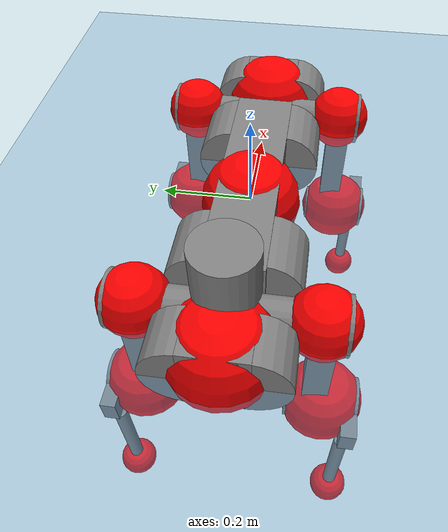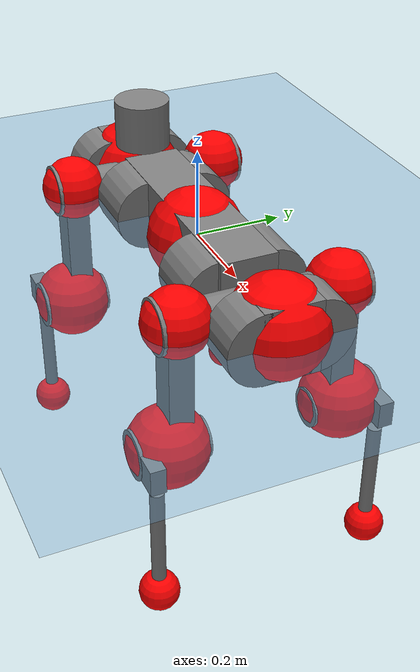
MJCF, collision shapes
<mujoco model="anymal_c">
  <compiler angle="radian" assetdir="assets" balanceinertia="true" inertiafromgeom="false"/>

  <option timestep="0.005" density="1.2" viscosity="2e-05"/>

  <size nkey="1"/>

  <visual>
    <quality shadowsize="8192"/>
    <map shadowclip="0.5"/>
  </visual>

  <default>
    <default class="/">
      <material specular="0" shininess="0.25"/>
      <geom contype="0" conaffinity="0" group="1" solref="-1000 -80"/>
      <site size="0.01 0.005 0.005" group="5"/>
      <general forcelimited="true" forcerange="-80 80" biastype="affine" gainprm="80" biasprm="0 -80 -2"/>
      <default class="anymal_c">
        <joint armature="0.01" damping="0.01" frictionloss="0.1"/>
        <default class="visual">
          <geom type="mesh" group="2"/>
          <default class="visual_zflip"/>
        </default>
        <default class="collision">
          <geom type="cylinder" group="3"/>
          <default class="foot">
            <geom size="0.03 0 0" type="sphere" condim="6" priority="1" friction="0.8 0.02 0.01" solimp="0.015 1 0.03"/>
          </default>
        </default>
      </default>
      <default class="reward_collision_sphere">
        <geom group="5" rgba="1 0 0 1"/>
      </default>
    </default>
  </default>

  <asset>
    <texture type="skybox" colorspace="auto" name="//unnamed_texture_0" builtin="gradient" rgb1="0.95 0.95 0.95" rgb2="0.95 0.95 0.95" width="100" height="600"/>
    <texture type="2d" colorspace="auto" name="texplane" builtin="checker" rgb1="0.345 0.575 0.748" rgb2="0.345 0.575 0.748" markrgb="1 1 1" width="512" height="512"/>
    <texture type="2d" colorspace="linear" name="base" file="base.png"/>
    <texture type="2d" colorspace="linear" name="top_shell" file="top_shell.png"/>
    <texture type="2d" colorspace="linear" name="bottom_shell" file="bottom_shell.png"/>
    <texture type="2d" colorspace="linear" name="remote" file="remote.png"/>
    <texture type="2d" colorspace="linear" name="hatch" file="hatch.png"/>
    <texture type="2d" colorspace="linear" name="handle" file="handle.png"/>
    <texture type="2d" colorspace="linear" name="face" file="face.png"/>
    <texture type="2d" colorspace="linear" name="battery" file="battery.png"/>
    <texture type="2d" colorspace="linear" name="lidar_cage" file="lidar_cage.png"/>
    <texture type="2d" colorspace="linear" name="depth_camera" file="depth_camera.png"/>
    <texture type="2d" colorspace="linear" name="wide_angle_camera" file="wide_angle_camera.png"/>
    <texture type="2d" colorspace="linear" name="lidar" file="lidar.png"/>
    <texture type="2d" colorspace="linear" name="drive" file="drive.png"/>
    <texture type="2d" colorspace="linear" name="hip_l" file="hip_l.png"/>
    <texture type="2d" colorspace="linear" name="shank_l" file="shank_l.png"/>
    <texture type="2d" colorspace="linear" name="foot" file="foot.png"/>
    <texture type="2d" colorspace="linear" name="thigh" file="thigh.png"/>
    <texture type="2d" colorspace="linear" name="shank_r" file="shank_r.png"/>
    <texture type="2d" colorspace="linear" name="hip_r" file="hip_r.png"/>
    <material name="MatPlane" class="/" texture="texplane" texuniform="true" texrepeat="2 2" specular="0.9" shininess="0.5"/>
    <material name="black_plastic" class="/" rgba="0.007 0.007 0.007 1"/>
    <material name="green" class="/" rgba="0.052 0.178 0.033 1"/>
    <material name="red" class="/" rgba="0.178 0.006 0.005 1"/>
    <material name="yellow" class="/" rgba="0.178 0.119 0.006 1"/>
    <material name="lwl" class="/" rgba="0.8 0.8 0.8 1"/>
    <material name="base" class="/" texture="base"/>
    <material name="top_shell" class="/" texture="top_shell"/>
    <material name="bottom_shell" class="/" texture="bottom_shell"/>
    <material name="hip_l" class="/" texture="hip_l"/>
    <material name="thigh" class="/" texture="thigh"/>
    <material name="shank_l" class="/" texture="shank_l"/>
    <material name="foot" class="/" texture="foot"/>
    <material name="hip_r" class="/" texture="hip_r"/>
    <material name="shank" class="/" texture="shank_r"/>
    <material name="hatch" class="/" texture="hatch"/>
    <material name="remote" class="/" texture="remote"/>
    <material name="handle" class="/" texture="handle"/>
    <material name="face" class="/" texture="face"/>
    <material name="depth_camera" class="/" texture="depth_camera"/>
    <material name="wide_angle_camera" class="/" texture="wide_angle_camera"/>
    <material name="battery" class="/" texture="battery"/>
    <material name="lidar_cage" class="/" texture="lidar_cage"/>
    <material name="lidar" class="/" texture="lidar"/>
    <material name="drive" class="/" texture="drive"/>
    <mesh name="base_0" class="/" file="base_0.obj"/>
    <mesh name="base_1" class="/" file="base_1.obj"/>
    <mesh name="base_2" class="/" file="base_2.obj"/>
    <mesh name="base_3" class="/" file="base_3.obj"/>
    <mesh name="base_4" class="/" file="base_4.obj"/>
    <mesh name="base_5" class="/" file="base_5.obj"/>
    <mesh name="top_shell" class="/" file="top_shell.obj"/>
    <mesh name="bottom_shell" class="/" file="bottom_shell.obj"/>
    <mesh name="remote" class="/" file="remote.obj"/>
    <mesh name="handle" class="/" file="handle.obj"/>
    <mesh name="face" class="/" file="face.obj"/>
    <mesh name="wide_angle_camera" class="/" file="wide_angle_camera.obj"/>
    <mesh name="depth_camera" class="/" file="depth_camera.obj"/>
    <mesh name="battery" class="/" file="battery.obj"/>
    <mesh name="lidar_cage" class="/" file="lidar_cage.obj"/>
    <mesh name="lidar" class="/" file="lidar.obj"/>
    <mesh name="drive" class="/" file="drive.obj"/>
    <mesh name="hip_l" class="/" file="hip_l.obj"/>
    <mesh name="thigh" class="/" file="thigh.obj"/>
    <mesh name="shank_l" class="/" file="shank_l.obj"/>
    <mesh name="foot" class="/" file="foot.obj"/>
    <mesh name="hip_r" class="/" file="hip_r.obj"/>
    <mesh name="hatch" class="/" file="hatch.obj"/>
    <mesh name="shank_r" class="/" file="shank_r.obj"/>
  </asset>

  <worldbody>
    <geom name="floor" class="/" size="100 100 0.125" type="plane" group="0" material="MatPlane"/>
    <light name="toplight_shadow" class="/" pos="0 0 5" dir="0.0990148 0.0990148 -0.990148" type="directional" ambient="0.04 0.04 0.04" diffuse="0.55 0.55 0.55" specular="0.12 0.12 0.12"/>
    <light name="toplight_fill" class="/" pos="0 0 5" dir="0.0990148 0.0990148 -0.990148" type="directional" castshadow="false" ambient="0.04 0.04 0.04" diffuse="0.3 0.3 0.3" specular="0.08 0.08 0.08"/>
    <body name="trunk" childclass="anymal_c" pos="-0.00282454 -0.000991861 -0.00220864" quat="0.999999 0.000846888 0.000967592 0.000420971">
      <inertial pos="-0.000419149 0.00212287 0.0529053" quat="0.490456 0.49874 0.501271 0.50935" mass="15.0812" diaginertia="0.339427 0.229401 0.314035"/>
      <joint name="//unnamed_joint_0" type="free" armature="0" damping="0" frictionloss="0"/>
      <geom name="//unnamed_geom_1" class="visual" material="green" mesh="base_0"/>
      <geom name="//unnamed_geom_2" class="visual" material="yellow" mesh="base_1"/>
      <geom name="//unnamed_geom_3" class="visual" material="red" mesh="base_2"/>
      <geom name="//unnamed_geom_4" class="visual" material="black_plastic" mesh="base_3"/>
      <geom name="//unnamed_geom_5" class="visual" material="lwl" mesh="base_4"/>
      <geom name="//unnamed_geom_6" class="visual" material="base" mesh="base_5"/>
      <geom name="trunk_1" class="collision" size="0.268135 0.0647222 0.0832142" type="box"/>
      <geom name="trunk_2" class="collision" size="0.0832142 0.0670337" pos="0.190984 0.0574973 0" quat="0.707107 0 0.707107 0"/>
      <geom name="trunk_3" class="collision" size="0.0832142 0.0670337" pos="-0.190984 0.0574973 0" quat="0.707107 0 0.707107 0"/>
      <geom name="trunk_4" class="collision" size="0.0832142 0.0670337" pos="0.190984 -0.0574973 0" quat="0.707107 0 0.707107 0"/>
      <geom name="trunk_5" class="collision" size="0.0832142 0.0670337" pos="-0.190984 -0.0574973 0" quat="0.707107 0 0.707107 0"/>
      <geom name="//unnamed_geom_12" class="visual" material="top_shell" mesh="top_shell"/>
      <geom name="//unnamed_geom_13" class="visual" material="bottom_shell" mesh="bottom_shell"/>
      <geom name="//unnamed_geom_14" class="visual" material="remote" mesh="remote"/>
      <geom name="//unnamed_geom_15" class="visual" material="handle" mesh="handle"/>
      <geom name="//unnamed_geom_16" class="visual" pos="0.363966 0 0" quat="1 0 0 0" material="face" mesh="face"/>
      <geom name="trunk_6" class="collision" size="0.0508531 0.0647222 0.0832142" pos="0.412261 0 0" type="box"/>
      <geom name="//unnamed_geom_18" class="collision" size="0.0832142 0.0508531" pos="0.412261 0.0574973 0" quat="0.707107 0 0.707107 0"/>
      <geom name="//unnamed_geom_19" class="collision" size="0.0832142 0.0508531" pos="0.412261 -0.0574973 0" quat="0.707107 0 0.707107 0"/>
      <geom name="//unnamed_geom_20" class="visual" pos="0.405376 0 -0.0328619" quat="0.965926 0 0.258819 0" material="depth_camera" mesh="depth_camera"/>
      <geom name="//unnamed_geom_21" class="visual" pos="0.450458 0 0.0160827" material="wide_angle_camera" mesh="wide_angle_camera"/>
      <geom name="//unnamed_geom_22" class="visual_zflip" pos="-0.363966 0 0" quat="0 0 0 1" material="face" mesh="face"/>
      <geom name="trunk_7" class="collision" size="0.0508531 0.0647222 0.0832142" pos="-0.412261 0 0" quat="0 0 0 1" type="box"/>
      <geom name="//unnamed_geom_24" class="collision" size="0.0832142 0.0508531" pos="-0.412261 -0.0574973 0" quat="0 -0.707107 0 0.707107"/>
      <geom name="//unnamed_geom_25" class="collision" size="0.0832142 0.0508531" pos="-0.412261 0.0574973 0" quat="0 -0.707107 0 0.707107"/>
      <geom name="//unnamed_geom_26" class="visual" pos="-0.405376 0 -0.0328619" quat="0 -0.258819 0 0.965926" material="depth_camera" mesh="depth_camera"/>
      <geom name="//unnamed_geom_27" class="visual_zflip" pos="-0.450458 0 0.0160827" quat="0 0 0 1" material="wide_angle_camera" mesh="wide_angle_camera"/>
      <geom name="//unnamed_geom_28" class="visual" material="battery" mesh="battery"/>
      <geom name="//unnamed_geom_29" class="visual" pos="0 0.0620677 0.0297178" quat="0.683013 -0.183013 0.183013 0.683013" material="depth_camera" mesh="depth_camera"/>
      <geom name="//unnamed_geom_30" class="visual" pos="0 -0.0620677 0.0297178" quat="0.683013 0.183013 0.183013 -0.683013" material="depth_camera" mesh="depth_camera"/>
      <geom name="//unnamed_geom_31" class="visual" pos="-0.319623 0 0.0789633" quat="1 0 0 0" material="lidar_cage" mesh="lidar_cage"/>
      <geom name="trunk_8" class="collision" size="0.0647222 0.0554761" pos="-0.319623 0 0.143423"/>
      <geom name="//unnamed_geom_33" class="visual" pos="-0.319623 -2.22738e-05 0.15277" quat="0.707107 0 0 -0.707107" material="lidar" mesh="lidar"/>
      <geom name="//unnamed_geom_34" class="visual" pos="0.263338 0.0855145 -4.36324e-09" quat="0.258819 0.965926 0 0" material="drive" mesh="drive"/>
      <geom name="//unnamed_geom_35" class="visual" pos="0.263338 -0.0855145 4.36324e-09" quat="0.258819 -0.965926 0 0" material="drive" mesh="drive"/>
      <geom name="//unnamed_geom_36" class="visual" pos="-0.263338 0.0855145 4.36324e-09" quat="0 0 0.965926 -0.258819" material="drive" mesh="drive"/>
      <geom name="//unnamed_geom_37" class="visual" pos="-0.263338 -0.0855145 -4.36324e-09" quat="0 0 -0.965926 -0.258819" material="drive" mesh="drive"/>
      <geom name="//unnamed_geom_38" class="visual" pos="0.101858 0 0.0784262" quat="1 0 0 0" material="hatch" mesh="hatch"/>
      <geom name="//unnamed_geom_39" class="reward_collision_sphere" size="0.110952"/>
      <geom name="//unnamed_geom_40" class="reward_collision_sphere" size="0.110952" pos="0.395138 0 0"/>
      <geom name="//unnamed_geom_41" class="reward_collision_sphere" size="0.110952" pos="-0.395138 0 0"/>
      <site name="imu" pos="0.230701 -0.000312875 0.0440628" size="0.00924602"/>
      <camera name="track" pos="0 -1.64278 0" quat="0.707107 0.707107 0 0" mode="trackcom"/>
      <camera name="ego_camera" pos="0.395138 0 -0.0429732" quat="-0.5 -0.5 0.5 0.5"/>
      <body name="LF_HIP" pos="0.264002 0.0853651 -0.00281518" quat="0.258009 0.966142 0.000429782 -0.000320783">
        <inertial pos="0.0475929 -0.0131618 -0.00891483" quat="-0.114344 0.709815 -0.138659 0.681074" mass="2.26178" diaginertia="0.00314558 0.00189562 0.00497621"/>
        <joint name="LF_HAA" pos="0 0 0" axis="0.999882 -0.00467553 -0.0146356" range="-0.67351 0.485822" armature="0.0106393" damping="0.00357379" frictionloss="0.0967837"/>
        <geom name="//unnamed_geom_42" class="visual" pos="0 -0.00025667 4.21578e-05" quat="0.258819 -0.965926 0 0" material="hip_l" mesh="hip_l"/>
        <geom name="//unnamed_geom_43" class="visual" pos="0.0525973 -0.0630762 -0.038288" quat="0.183013 -0.683013 0.683013 0.183013" material="drive" mesh="drive"/>
        <geom name="//unnamed_geom_44" class="collision" size="0.0462301 0.0647222" pos="0.0525973 -0.00982367 -0.00741825" quat="-0.353553 -0.612372 0.612372 -0.353553"/>
        <body name="LF_THIGH" pos="0.0528874 -0.0597191 -0.0469249" quat="0.183056 -0.682839 0.683109 0.183255">
          <inertial pos="0.0272309 -0.00217791 -0.265325" quat="0.99303 -0.00417755 -0.0805032 0.0859834" mass="2.43612" diaginertia="0.0155416 0.0107777 0.00590756"/>
          <joint name="LF_HFE" pos="0 0 0" axis="0.999999 -0.00117096 -0.000148734" stiffness="0.00855362" range="-3.15069 3.17427" armature="0.00824819" damping="0" frictionloss="0.0930745"/>
          <geom name="//unnamed_geom_45" class="visual" pos="0.001128 1.77746e-06 0" quat="0.707107 0 0 -0.707107" material="thigh" mesh="thigh"/>
          <geom name="//unnamed_geom_46" class="collision" size="0.0600991 0.0369841" pos="0.0351234 0 0" quat="0.5 0.5 -0.5 -0.5"/>
          <geom name="//unnamed_geom_47" class="collision" size="0.0346726 0.0277381 0.130659" pos="0.0263426 0 -0.151818" quat="0.707107 0 0 -0.707107" type="box"/>
          <geom name="//unnamed_geom_48" class="visual" pos="0.088072 0 -0.306184" quat="1 0 0 0" material="drive" mesh="drive"/>
          <geom name="//unnamed_geom_49" class="collision" size="0.0462301 0.0647222" pos="0.026606 0 -0.306184" quat="0.707107 0 0.707107 0"/>
          <geom name="//unnamed_geom_50" class="reward_collision_sphere" size="0.0739682" pos="0.0219521 0 0"/>
          <body name="LF_SHANK" pos="0.0892142 0.0014583 -0.303569" quat="1 -0.000132008 8.64689e-05 5.57021e-05">
            <inertial pos="0.00438128 -0.0526694 -0.0839394" quat="0.992895 -0.116383 -0.000758423 -0.0247878" mass="0.480477" diaginertia="0.00551435 0.00347924 0.00160392"/>
            <joint name="LF_KFE" pos="0 0 0" axis="1 -0.000570574 -0.000119646" range="-3.08526 3.08924" armature="0.00921202" damping="0.00874465" frictionloss="0.0973152"/>
            <geom name="//unnamed_geom_51" class="visual" pos="0.000367816 0.00196121 0" quat="0.707107 0 0 -0.707107" material="shank_l" mesh="shank_l"/>
            <geom name="LF_kfe_act" class="collision" size="0.0554761 0.018492" pos="0.0175617 0 0" quat="0.5 0.5 -0.5 -0.5"/>
            <geom name="//unnamed_geom_53" class="collision" size="0.0531637 0.0312053 0.0175674" pos="0.0175617 -0.0472291 0" quat="0.5 0.5 -0.5 -0.5" type="box"/>
            <geom name="//unnamed_geom_54" class="visual" pos="0.0114589 -0.0716093 -0.363092" quat="0.382683 0 0 -0.92388" material="foot" mesh="foot"/>
            <geom name="LF_calf" class="collision" size="0.0161805 0.130602" pos="0.011459 -0.0722413 -0.181546" quat="0.707107 0 0 -0.707107"/>
            <geom name="LF_foot" class="foot" size="0.026823" pos="0.011459 -0.0722413 -0.338919" quat="0.707107 0 0 -0.707107"/>
            <geom name="//unnamed_geom_57" class="reward_collision_sphere" size="0.0924602" pos="-0.0439043 0 0"/>
            <geom name="//unnamed_geom_58" class="reward_collision_sphere" size="0.0462301" pos="0.011459 -0.0722413 -0.338919"/>
            <site name="LF_foot" class="foot" pos="0.011459 -0.0722413 -0.338919" quat="0.707107 0 0 -0.707107" size="0.00924602"/>
          </body>
        </body>
      </body>
      <body name="RF_HIP" pos="0.266201 -0.0834887 0.00240496" quat="0.258798 -0.965931 -8.39143e-06 5.71892e-05">
        <inertial pos="0.049799 0.0102935 -0.00868919" quat="0.141806 0.685047 0.126412 0.703293" mass="2.25645" diaginertia="0.00304777 0.0019251 0.00478911"/>
        <joint name="RF_HAA" pos="0 0 0" axis="0.999999 0.00140442 -1.3557e-05" range="-0.436636 0.71046" armature="0.00936653" damping="0.011537" frictionloss="0.0966354"/>
        <geom name="//unnamed_geom_59" class="visual" pos="0 0.000256668 4.21577e-05" quat="0.258819 0.965926 0 0" material="hip_r" mesh="hip_r"/>
        <geom name="//unnamed_geom_60" class="visual" pos="0.0525973 0.0630762 -0.038288" quat="0.183013 0.683013 0.683013 -0.183013" material="drive" mesh="drive"/>
        <geom name="//unnamed_geom_61" class="collision" size="0.0462301 0.0647222" pos="0.0525973 0.00982367 -0.00741825" quat="-0.353553 0.612372 0.612372 0.353553"/>
        <body name="RF_THIGH" pos="0.0550041 0.0617674 -0.0482589" quat="0.183017 0.683015 0.68301 -0.183009">
          <inertial pos="0.027482 -0.000144459 -0.265794" quat="0.992993 -0.00702238 -0.0749716 0.0910789" mass="2.51097" diaginertia="0.0157434 0.0114581 0.00614084"/>
          <joint name="RF_HFE" pos="0 0 0" axis="0.999997 0.000611497 0.0025594" stiffness="0.00468351" range="-3.18504 3.19424" armature="0.00807207" damping="0.00773798" frictionloss="0.0909951"/>
          <geom name="//unnamed_geom_62" class="visual" pos="0.001128 1.77746e-06 0" quat="0.707107 0 0 -0.707107" material="thigh" mesh="thigh"/>
          <geom name="//unnamed_geom_63" class="collision" size="0.0600991 0.0369841" pos="0.0351234 0 0" quat="0.5 0.5 0.5 0.5"/>
          <geom name="//unnamed_geom_64" class="collision" size="0.0346726 0.0277381 0.130659" pos="0.0263426 0 -0.151818" quat="0.707107 0 0 0.707107" type="box"/>
          <geom name="//unnamed_geom_65" class="visual" pos="0.088072 0 -0.306184" quat="1 0 0 0" material="drive" mesh="drive"/>
          <geom name="//unnamed_geom_66" class="collision" size="0.0462301 0.0647222" pos="0.026606 0 -0.306184" quat="0.707107 0 0.707107 0"/>
          <geom name="//unnamed_geom_67" class="reward_collision_sphere" size="0.0739682" pos="0.0219521 0 0"/>
          <body name="RF_SHANK" pos="0.0886844 -0.000777513 -0.306432" quat="1 -8.1659e-05 2.96743e-05 0.000143836">
            <inertial pos="0.00459047 0.0501505 -0.0853156" quat="0.992541 0.116979 0.00772582 0.0334577" mass="0.441726" diaginertia="0.00532578 0.00346508 0.0015298"/>
            <joint name="RF_KFE" pos="0 0 0" axis="0.999999 0.0004026 0.00120655" range="-3.15825 3.08946" armature="0.0106194" damping="0.00749754" frictionloss="0.0927941"/>
            <geom name="//unnamed_geom_68" class="visual" pos="0.000367814 -0.00196121 0" quat="0.707107 0 0 0.707107" material="shank" mesh="shank_r"/>
            <geom name="RF_kfe_act" class="collision" size="0.0554761 0.018492" pos="0.0175617 0 0" quat="0.5 0.5 0.5 0.5"/>
            <geom name="//unnamed_geom_70" class="collision" size="0.0531637 0.0312053 0.0175674" pos="0.0175617 0.0472291 0" quat="0.5 0.5 0.5 0.5" type="box"/>
            <geom name="//unnamed_geom_71" class="visual" pos="0.0114591 0.0716093 -0.363092" quat="0.382683 0 0 0.92388" material="foot" mesh="foot"/>
            <geom name="RF_calf" class="collision" size="0.0161805 0.130602" pos="0.011459 0.0722413 -0.181546" quat="0.707107 0 0 0.707107"/>
            <geom name="RF_foot" class="foot" size="0.0290157" pos="0.011459 0.0722413 -0.338919" quat="0.707107 0 0 0.707107"/>
            <geom name="//unnamed_geom_74" class="reward_collision_sphere" size="0.0924602" pos="-0.0439043 0 0"/>
            <geom name="//unnamed_geom_75" class="reward_collision_sphere" size="0.0462301" pos="0.011459 0.0722413 -0.338919"/>
            <site name="RF_foot" class="foot" pos="0.011459 0.0722413 -0.338919" quat="0.707107 0 0 0.707107" size="0.00924602"/>
          </body>
        </body>
      </body>
      <body name="LH_HIP" pos="-0.261856 0.0843393 -0.00121111" quat="-3.09934e-05 0.000210742 0.965945 -0.258748">
        <inertial pos="0.0504138 0.013377 -0.0113497" quat="0.134156 0.676332 0.131636 0.712214" mass="2.29264" diaginertia="0.00319957 0.00179933 0.00471711"/>
        <joint name="LH_HAA" pos="0 0 0" axis="1 -0.000747832 -0.000461763" range="-0.458935 0.770073" armature="0.00941262" damping="0" frictionloss="0.10361"/>
        <geom name="//unnamed_geom_76" class="visual" pos="0 0.000256668 4.21577e-05" quat="-0.258819 -0.965926 0 0" material="hip_r" mesh="hip_r"/>
        <geom name="//unnamed_geom_77" class="visual" pos="0.0525973 0.0630762 -0.038288" quat="0.183013 0.683013 0.683013 -0.183013" material="drive" mesh="drive"/>
        <geom name="//unnamed_geom_78" class="collision" size="0.0462301 0.0647222" pos="0.0525973 0.00982367 -0.00741825" quat="-0.353553 0.612372 0.612372 0.353553"/>
        <body name="LH_THIGH" pos="0.0519263 0.0597382 -0.0476277" quat="0.183157 0.683057 0.682994 -0.182771">
          <inertial pos="0.0246196 -0.000995395 -0.265289" quat="0.992821 -0.0152475 -0.0747428 0.0921292" mass="2.49684" diaginertia="0.015674 0.0113992 0.00592815"/>
          <joint name="LH_HFE" pos="0 0 0" axis="0.999887 5.83345e-05 -0.0150418" range="-3.18958 3.14937" armature="0.0097613" damping="0.0117282" frictionloss="0.0906153"/>
          <geom name="//unnamed_geom_79" class="visual" pos="0.001128 1.77746e-06 0" quat="0.707107 0 0 -0.707107" material="thigh" mesh="thigh"/>
          <geom name="//unnamed_geom_80" class="collision" size="0.0600991 0.0369841" pos="0.0351234 0 0" quat="0.5 0.5 -0.5 -0.5"/>
          <geom name="//unnamed_geom_81" class="collision" size="0.0346726 0.0277381 0.130659" pos="0.0263426 0 -0.151818" quat="0.707107 0 0 -0.707107" type="box"/>
          <geom name="//unnamed_geom_82" class="visual" pos="0.088072 0 -0.306184" quat="1 0 0 0" material="drive" mesh="drive"/>
          <geom name="//unnamed_geom_83" class="collision" size="0.0462301 0.0647222" pos="0.026606 0 -0.306184" quat="0.707107 0 0.707107 0"/>
          <geom name="//unnamed_geom_84" class="reward_collision_sphere" size="0.0739682" pos="0.0219521 0 0"/>
          <body name="LH_SHANK" pos="0.08612 0.000506953 -0.308659" quat="1 -0.0001853 0.00037035 -0.000327737">
            <inertial pos="0.00729938 0.047533 -0.083956" quat="0.99278 0.115988 0.0125906 0.027843" mass="0.450075" diaginertia="0.00532363 0.00352933 0.00158705"/>
            <joint name="LH_KFE" pos="0 0 0" axis="0.999917 0.00402585 0.0122174" range="-3.1308 3.1429" armature="0.00886444" damping="0.00349623" frictionloss="0.104274"/>
            <geom name="//unnamed_geom_85" class="visual" pos="0.000367814 -0.00196121 0" quat="-0.707107 0 0 -0.707107" material="shank" mesh="shank_r"/>
            <geom name="LH_kfe_act" class="collision" size="0.0554761 0.018492" pos="0.0175617 0 0" quat="0.5 0.5 -0.5 -0.5"/>
            <geom name="//unnamed_geom_87" class="collision" size="0.0531637 0.0312053 0.0175674" pos="0.0175617 0.0472291 0" quat="0.5 0.5 -0.5 -0.5" type="box"/>
            <geom name="//unnamed_geom_88" class="visual" pos="0.0114591 0.0716093 -0.363092" quat="-0.382683 0 0 -0.92388" material="foot" mesh="foot"/>
            <geom name="LH_calf" class="collision" size="0.0161805 0.130602" pos="0.011459 0.0722413 -0.181546" quat="0.707107 0 0 -0.707107"/>
            <geom name="LH_foot" class="foot" size="0.0320844" pos="0.011459 0.0722413 -0.338919" quat="0.707107 0 0 -0.707107"/>
            <geom name="//unnamed_geom_91" class="reward_collision_sphere" size="0.0924602" pos="-0.0439043 0 0"/>
            <geom name="//unnamed_geom_92" class="reward_collision_sphere" size="0.0462301" pos="0.011459 0.0722413 -0.338919"/>
            <site name="LH_foot" class="foot" pos="0.011459 0.0722413 -0.338919" quat="0.707107 0 0 -0.707107" size="0.00924602"/>
          </body>
        </body>
      </body>
      <body name="RH_HIP" pos="-0.263247 -0.0867147 0.00126365" quat="0.000318553 5.4559e-05 -0.965984 -0.2586">
        <inertial pos="0.0500337 -0.0101791 -0.0119824" quat="-0.128646 0.709529 -0.135115 0.679532" mass="2.19788" diaginertia="0.00302155 0.00181279 0.00460467"/>
        <joint name="RH_HAA" pos="0 0 0" axis="0.999998 0.00133541 -0.00111983" range="-0.702483 0.437655" armature="0.00816675" damping="0" frictionloss="0.097633"/>
        <geom name="//unnamed_geom_93" class="visual" pos="0 -0.00025667 4.21578e-05" quat="-0.258819 0.965926 0 0" material="hip_l" mesh="hip_l"/>
        <geom name="//unnamed_geom_94" class="visual" pos="0.0525973 -0.0630762 -0.038288" quat="-0.183013 0.683013 -0.683013 -0.183013" material="drive" mesh="drive"/>
        <geom name="//unnamed_geom_95" class="collision" size="0.0462301 0.0647222" pos="0.0525973 -0.00982367 -0.00741825" quat="0.353553 0.612372 -0.612372 0.353553"/>
        <body name="RH_THIGH" pos="0.0519933 -0.0593782 -0.042637" quat="-0.182712 0.683023 -0.683079 -0.183028">
          <inertial pos="0.0247108 0.00275686 -0.263931" quat="0.993351 -0.0049405 -0.0795787 0.0830413" mass="2.26396" diaginertia="0.0156167 0.0109333 0.00598342"/>
          <joint name="RH_HFE" pos="0 0 0" axis="0.99997 -0.00763316 -0.001027" stiffness="0.0107714" range="-3.1838 3.19057" armature="0.00941141" damping="0.00804696" frictionloss="0.0799638"/>
          <geom name="//unnamed_geom_96" class="visual" pos="0.001128 1.77746e-06 0" quat="0.707107 0 0 -0.707107" material="thigh" mesh="thigh"/>
          <geom name="//unnamed_geom_97" class="collision" size="0.0600991 0.0369841" pos="0.0351234 0 0" quat="0.5 0.5 0.5 0.5"/>
          <geom name="//unnamed_geom_98" class="collision" size="0.0346726 0.0277381 0.130659" pos="0.0263426 0 -0.151818" quat="0.707107 0 0 0.707107" type="box"/>
          <geom name="//unnamed_geom_99" class="visual" pos="0.088072 0 -0.306184" quat="1 0 0 0" material="drive" mesh="drive"/>
          <geom name="//unnamed_geom_100" class="collision" size="0.0462301 0.0647222" pos="0.026606 0 -0.306184" quat="0.707107 0 0.707107 0"/>
          <geom name="//unnamed_geom_101" class="reward_collision_sphere" size="0.0739682" pos="0.0219521 0 0"/>
          <body name="RH_SHANK" pos="0.0897453 0.00110666 -0.305351" quat="1 0.000144701 0.00022012 0.000405812">
            <inertial pos="0.00598818 -0.0500432 -0.0867947" quat="0.992751 -0.118123 -0.0032852 -0.0219482" mass="0.433082" diaginertia="0.00514833 0.00337454 0.00153207"/>
            <joint name="RH_KFE" pos="0 0 0" axis="0.99998 0.00120186 -0.00627182" range="-3.13102 3.18527" armature="0.00841954" damping="0.00288133" frictionloss="0.0906152"/>
            <geom name="//unnamed_geom_102" class="visual" pos="0.000367816 0.00196121 0" quat="0.707107 0 0 -0.707107" material="shank_l" mesh="shank_l"/>
            <geom name="RH_kfe_act" class="collision" size="0.0554761 0.018492" pos="0.0175617 0 0" quat="0.5 0.5 0.5 0.5"/>
            <geom name="//unnamed_geom_104" class="collision" size="0.0531637 0.0312053 0.0175674" pos="0.0175617 -0.0472291 0" quat="0.5 0.5 0.5 0.5" type="box"/>
            <geom name="//unnamed_geom_105" class="visual" pos="0.0114589 -0.0716093 -0.363092" quat="0.382683 0 0 -0.92388" material="foot" mesh="foot"/>
            <geom name="RH_calf" class="collision" size="0.0161805 0.130602" pos="0.011459 -0.0722413 -0.181546" quat="0.707107 0 0 0.707107"/>
            <geom name="RH_foot" class="foot" size="0.0256782" pos="0.011459 -0.0722413 -0.338919" quat="0.707107 0 0 0.707107"/>
            <geom name="//unnamed_geom_108" class="reward_collision_sphere" size="0.0924602" pos="-0.0439043 0 0"/>
            <geom name="//unnamed_geom_109" class="reward_collision_sphere" size="0.0462301" pos="0.011459 -0.0722413 -0.338919"/>
            <site name="RH_foot" class="foot" pos="0.011459 -0.0722413 -0.338919" quat="0.707107 0 0 0.707107" size="0.00924602"/>
          </body>
        </body>
      </body>
    </body>
  </worldbody>

  <contact>
    <pair class="/" geom1="floor" geom2="LF_foot" name="//unnamed_contact_0"/>
    <pair class="/" geom1="floor" geom2="RF_foot" name="//unnamed_contact_1"/>
    <pair class="/" geom1="floor" geom2="LH_foot" name="//unnamed_contact_2"/>
    <pair class="/" geom1="floor" geom2="RH_foot" name="//unnamed_contact_3"/>
  </contact>

  <actuator>
    <general name="LF_HAA" class="/" joint="LF_HAA" forcerange="-74.1923 74.1923" gainprm="69.1336" biasprm="0 -69.1336 -1.92945"/>
    <general name="LF_HFE" class="/" joint="LF_HFE" forcerange="-81.0305 81.0305" gainprm="69.1336" biasprm="0 -69.1336 -1.92945"/>
    <general name="LF_KFE" class="/" joint="LF_KFE" forcerange="-66.6757 66.6757" gainprm="69.1336" biasprm="0 -69.1336 -1.92945"/>
    <general name="RF_HAA" class="/" joint="RF_HAA" forcerange="-71.2566 71.2566" gainprm="69.1336" biasprm="0 -69.1336 -1.92945"/>
    <general name="RF_HFE" class="/" joint="RF_HFE" forcerange="-83.2977 83.2977" gainprm="69.1336" biasprm="0 -69.1336 -1.92945"/>
    <general name="RF_KFE" class="/" joint="RF_KFE" forcerange="-77.0954 77.0954" gainprm="69.1336" biasprm="0 -69.1336 -1.92945"/>
    <general name="LH_HAA" class="/" joint="LH_HAA" forcerange="-80.2594 80.2594" gainprm="69.1336" biasprm="0 -69.1336 -1.92945"/>
    <general name="LH_HFE" class="/" joint="LH_HFE" forcerange="-81.0448 81.0448" gainprm="69.1336" biasprm="0 -69.1336 -1.92945"/>
    <general name="LH_KFE" class="/" joint="LH_KFE" forcerange="-70.1009 70.1009" gainprm="69.1336" biasprm="0 -69.1336 -1.92945"/>
    <general name="RH_HAA" class="/" joint="RH_HAA" forcerange="-74.2525 74.2525" gainprm="69.1336" biasprm="0 -69.1336 -1.92945"/>
    <general name="RH_HFE" class="/" joint="RH_HFE" forcerange="-69.56 69.56" gainprm="69.1336" biasprm="0 -69.1336 -1.92945"/>
    <general name="RH_KFE" class="/" joint="RH_KFE" forcerange="-66.5722 66.5722" gainprm="69.1336" biasprm="0 -69.1336 -1.92945"/>
  </actuator>

  <sensor>
    <gyro site="imu" name="imu_angular_velocity"/>
    <velocimeter site="imu" name="imu_linear_velocity"/>
    <framelinvel objtype="site" objname="LF_foot" name="LF_foot_global_linear_velocity"/>
    <framelinvel objtype="site" objname="RF_foot" name="RF_foot_global_linear_velocity"/>
    <framelinvel objtype="site" objname="LH_foot" name="LH_foot_global_linear_velocity"/>
    <framelinvel objtype="site" objname="RH_foot" name="RH_foot_global_linear_velocity"/>
  </sensor>

  <keyframe>
    <key name="home" qpos="0 0 0.55 1 0 0 0 0 0.4 -0.8 0 -0.4 0.8 0 -0.4 0.8 0 0.4 -0.8"/>
  </keyframe>
</mujoco>
